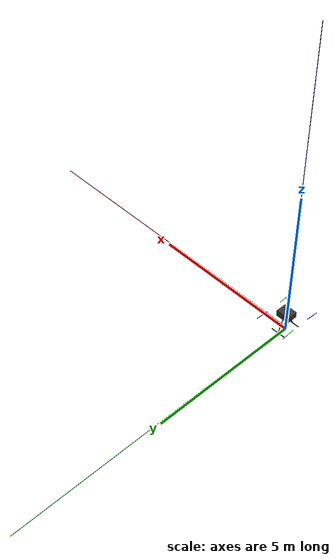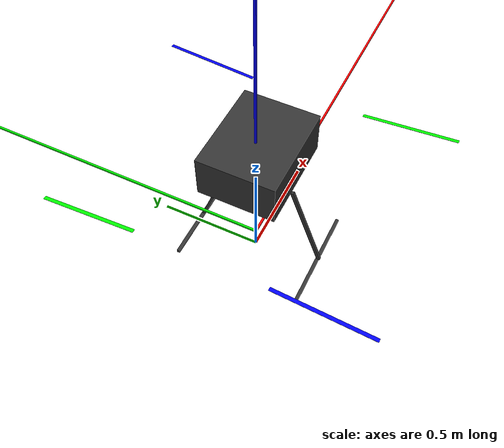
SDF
<sdf version="1.9">
 <world name="runway">
  <physics name="1ms" type="ignore">
   <max_step_size>0.001</max_step_size>
   <real_time_factor>1.0</real_time_factor>
  </physics>
  <plugin filename="gz-sim-physics-system" name="gz::sim::systems::Physics"/>
  <plugin filename="gz-sim-sensors-system" name="gz::sim::systems::Sensors">
   <render_engine>ogre2</render_engine>
  </plugin>
  <plugin filename="gz-sim-user-commands-system" name="gz::sim::systems::UserCommands"/>
  <plugin filename="gz-sim-scene-broadcaster-system" name="gz::sim::systems::SceneBroadcaster"/>
  <plugin filename="gz-sim-imu-system" name="gz::sim::systems::Imu"/>
  <scene><ambient>1.0 1.0 1.0</ambient><background>0.8 0.8 0.8</background></scene>
  <light type="directional" name="sun">
   <pose>0 0 10 0 0 0</pose>
   <diffuse>0.8 0.8 0.8 1</diffuse>
   <specular>0.8 0.8 0.8 1</specular>
   <attenuation>
    <range>1000</range>
    <constant>0.9</constant>
    <linear>0.01</linear>
    <quadratic>0.001</quadratic>
   </attenuation>
   <direction>-0.5 0.1 -0.9</direction>
  </light>
  <model name="axes">
   <static>1</static>
   <link name="link">
    <visual name="r">
     <pose>5 0 0.1 0 0 0</pose>
     <geometry><box><size>10 0.01 0.01</size></box></geometry>
     <material>
      <ambient>1 0 0 1</ambient>
      <diffuse>1 0 0 1</diffuse>
      <emissive>1 0 0 1</emissive>
      <specular>0.5 0.5 0.5 1</specular>
     </material>
    </visual>
    <visual name="g">
     <pose>0 5 0.1 0 0 0</pose>
     <geometry><box><size>0.01 10 0.01</size></box></geometry>
     <material>
      <ambient>0 1 0 1</ambient>
      <diffuse>0 1 0 1</diffuse>
      <emissive>0 1 0 1</emissive>
      <specular>0.5 0.5 0.5 1</specular>
     </material>
    </visual>
    <visual name="b">
     <pose>0 0 5.1 0 0 0</pose>
     <geometry><box><size>0.01 0.01 10</size></box></geometry>
     <material>
      <ambient>0 0 1 1</ambient>
      <diffuse>0 0 1 1</diffuse>
      <emissive>0 0 1 1</emissive>
      <specular>0.5 0.5 0.5 1</specular>
     </material>
    </visual>
   </link>
  </model>
  <include><pose degrees="true">0 0 0.5 0 0 90</pose><uri>model://anna1</uri></include>
 </world>
</sdf>

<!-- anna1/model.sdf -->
<sdf version='1.9'>
  <model name='anna1'>
    <self_collide>0</self_collide>
    <static>0</static>
    <link name="base_link">
      <velocity_decay>
        <linear>0.0</linear>
        <angular>0.0</angular>
      </velocity_decay>
      <inertial>
        <mass>15.5</mass>
        <inertia>
          <ixx>0.4</ixx>
          <ixy>0</ixy>
          <ixz>0</ixz>
          <iyy>0.4</iyy>
          <iyz>0</iyz>
          <izz>0.8</izz>
        </inertia>
        <pose>0 0 0 0 0 0</pose>
      </inertial>
      <gravity>1</gravity>

      <visual name="base_link_visual_0">
        <pose>0 -0.03 .127 0 0 0</pose>
        <geometry>
          <box>
            <size>0.35355339059327373 0.443553 0.2</size>
          </box>
        </geometry>
        <material>
          <ambient>0.2 0.2 0.2 1.0</ambient>
          <diffuse>0.2 0.2 0.2 1.0</diffuse>
        </material>
      </visual>
      <visual name='base_link_visual_2'>
        <pose>-0.24 -0.025 -0.25 0.35 0 1.5708</pose>
        <geometry>
          <box>
            <size>0.015 0.015 0.45</size>
          </box>
        </geometry>
        <material>
          <ambient>0.2 0.2 0.2 1.0</ambient>
          <diffuse>0.2 0.2 0.2 1.0</diffuse>
        </material>
      </visual>
      <visual name='base_link_visual_1'>
        <pose>0.22 -0.025 -0.25 -0.35 0 1.5708</pose>
        <geometry>
          <box>
            <size>0.015 0.015 0.45</size>
          </box>
        </geometry>
        <material>
          <ambient>0.2 0.2 0.2 1.0</ambient>
          <diffuse>0.2 0.2 0.2 1.0</diffuse>
        </material>
      </visual>
      <visual name='base_link_visual_3'>
        <pose>-0.31 -0.022 -0.465 0 0 1.5708</pose>
        <geometry>
          <box>
            <size>0.5 0.015 0.015</size>
          </box>
        </geometry>
        <material>
          <ambient>0.2 0.2 0.2 1.0</ambient>
          <diffuse>0.2 0.2 0.2 1.0</diffuse>
        </material>
      </visual>
      <visual name='base_link_visual_4'>
        <pose>0.3 -0.022 -0.465 0 0 1.5708</pose>
        <geometry>
          <box>
            <size>0.5 0.015 0.015</size>
          </box>
        </geometry>
        <material>
          <ambient>0.2 0.2 0.2 1.0</ambient>
          <diffuse>0.2 0.2 0.2 1.0</diffuse>
        </material>
      </visual>

      <collision name="base_link_collision_0">
        <pose>0 -0.03 .127 0 0 0</pose>
        <geometry>
          <box>
            <size>0.35355339059327373 0.443553 0.2</size>
          </box>
        </geometry>
        <surface>
          <contact>
            <ode>
              <min_depth>0.001</min_depth>
              <max_vel>0</max_vel>
            </ode>
          </contact>
          <friction>
             <ode>
               <mu>1000</mu>
               <mu2>500</mu2>
             </ode>
          </friction>
        </surface>
      </collision>
      <collision name='base_link_collision_1'>
        <pose>0.22 -0.025 -0.25 -0.35 0 1.5708</pose>
        <geometry>
          <box>
            <size>0.015 0.015 0.45</size>
          </box>
        </geometry>
        <surface>
          <contact>
            <ode>
              <min_depth>0.001</min_depth>
              <max_vel>0</max_vel>
            </ode>
          </contact>
          <friction>
             <ode>
               <mu>1000</mu>
               <mu2>500</mu2>
             </ode>
          </friction>
        </surface>
      </collision>
      <collision name='base_link_collision_2'>
        <pose>-0.24 -0.025 -0.25 0.35 0 1.5708</pose>
        <geometry>
          <box>
            <size>0.015 0.015 0.45</size>
          </box>
        </geometry>
        <surface>
          <contact>
            <ode>
              <min_depth>0.001</min_depth>
              <max_vel>0</max_vel>
            </ode>
          </contact>
          <friction>
             <ode>
               <mu>1000</mu>
               <mu2>500</mu2>
             </ode>
          </friction>
        </surface>
      </collision>
      <collision name='base_link_collision_3'>
        <pose>-0.31 -0.022 -0.465 0 0 1.5708</pose>
        <geometry>
          <box>
            <size>0.5 0.015 0.015</size>
          </box>
        </geometry>
        <surface>
          <contact>
            <ode>
              <min_depth>0.001</min_depth>
              <max_vel>0</max_vel>
            </ode>
          </contact>
          <friction>
             <ode>
               <mu>1000</mu>
               <mu2>500</mu2>
             </ode>
          </friction>
        </surface>
      </collision>
      <collision name='base_link_collision_4'>
        <pose>0.3 -0.022 -0.465 0 0 1.5708</pose>
        <geometry>
          <box>
            <size>0.5 0.015 0.015</size>
          </box>
        </geometry>
        <surface>
          <contact>
            <ode>
              <min_depth>0.001</min_depth>
              <max_vel>0</max_vel>
            </ode>
          </contact>
          <friction>
             <ode>
               <mu>1000</mu>
               <mu2>500</mu2>
             </ode>
          </friction>
        </surface>
      </collision>

      <sensor name="imu_sensor" type="imu">
        <pose degrees="true">0 0 0 180 0 0</pose>
        <always_on>1</always_on>
        <update_rate>1000</update_rate>
      </sensor>
    </link>
    <link name="rotor_0">
      <pose>0.49 -0.52 0.05 0.08 -0.08 0</pose>
      <gravity>1</gravity>
      <self_collide>0</self_collide>
      <velocity_decay/>
      <inertial>
        <mass>0.0160769</mass>
        <inertia>
          <ixx>3.8e-07</ixx>
          <ixy>0</ixy>
          <ixz>0</ixz>
          <iyy>2.612e-05</iyy>
          <iyz>0</iyz>
          <izz>2.65e-05</izz>
        </inertia>
        <pose>0 0 0 0 0 0</pose>
      </inertial>
      <enable_wind>0</enable_wind>
      <kinematic>0</kinematic>
      <visual name='rotor_visual'>
        <pose>0 0 0 0 0 0</pose>
        <geometry>
          <box>
            <size>0.44 0.016923 0.000846</size>
          </box>
        </geometry>
        <material>
          <ambient>0 0 1 1.0</ambient>
          <diffuse>0 0 1 1.0</diffuse>
        </material>
      </visual>
      <collision name='rotor_collision'>
        <laser_retro>0</laser_retro>
        <max_contacts>10</max_contacts>
        <pose>0 0 0 0 0 0</pose>
        <geometry>
          <box>
            <size>0.44 0.016923 0.000846</size>
          </box>
        </geometry>
      </collision>
    </link>
    <joint name="rotor_0_joint" type="revolute">
      <parent>base_link</parent>
      <child>rotor_0</child>
      <axis>
        <xyz>0 0 1</xyz>
        <limit>
          <lower>-1e+16</lower>
          <upper>1e+16</upper>
        </limit>
        <dynamics>
          <damping>0.004</damping>
        </dynamics>
        <use_parent_model_frame>1</use_parent_model_frame>
      </axis>
      <physics>
        <ode>
          <implicit_spring_damper>1</implicit_spring_damper>
        </ode>
      </physics>
    </joint>

    <link name="rotor_1">
      <pose>-0.52 0.499 0.05 0.08 -0.08 0</pose>
      <gravity>1</gravity>
      <self_collide>0</self_collide>
      <velocity_decay/>
      <inertial>
        <mass>0.0160769</mass>
        <inertia>
          <ixx>3.8e-07</ixx>
          <ixy>0</ixy>
          <ixz>0</ixz>
          <iyy>2.612e-05</iyy>
          <iyz>0</iyz>
          <izz>2.65e-05</izz>
        </inertia>
        <pose>0 0 0 0 0 0</pose>
      </inertial>
      <enable_wind>0</enable_wind>
      <kinematic>0</kinematic>
      <visual name='rotor_visual'>
        <pose>0 0 0 0 0 0</pose>
        <geometry>
          <box>
            <size>0.44 0.016923 0.000846</size>
          </box>
        </geometry>
        <material>
          <ambient>0 0 1 1.0</ambient>
          <diffuse>0 0 1 1.0</diffuse>
        </material>
      </visual>
      <collision name='rotor_collision'>
        <laser_retro>0</laser_retro>
        <max_contacts>10</max_contacts>
        <pose>0 0 0 0 0 0</pose>
        <geometry>
          <box>
            <size>0.44 0.016923 0.000846</size>
          </box>
        </geometry>
      </collision>
    </link>
    <joint name="rotor_1_joint" type="revolute">
      <parent>base_link</parent>
      <child>rotor_1</child>
      <axis>
        <xyz>0 0 1</xyz>
        <limit>
          <lower>-1e+16</lower>
          <upper>1e+16</upper>
        </limit>
        <dynamics>
          <damping>0.004</damping>
        </dynamics>
        <use_parent_model_frame>1</use_parent_model_frame>
      </axis>
      <physics>
        <ode>
          <implicit_spring_damper>1</implicit_spring_damper>
        </ode>
      </physics>
    </joint>

    <link name="rotor_2">
      <pose>0.5085 0.5 0.05 0.08 0.08 0</pose>
      <gravity>1</gravity>
      <self_collide>0</self_collide>
      <velocity_decay/>
      <inertial>
        <mass>0.0160769</mass>
        <inertia>
          <ixx>3.8e-07</ixx>
          <ixy>0</ixy>
          <ixz>0</ixz>
          <iyy>2.612e-05</iyy>
          <iyz>0</iyz>
          <izz>2.65e-05</izz>
        </inertia>
        <pose>0 0 0 0 0 0</pose>
      </inertial>
      <enable_wind>0</enable_wind>
      <kinematic>0</kinematic>
      <visual name='rotor_visual'>
        <pose>0 0 0 0 0 0</pose>
        <geometry>
          <box>
            <size>0.44 0.016923 0.000846</size>
          </box>
        </geometry>
        <material>
          <ambient>0 1 0 1.0</ambient>
          <diffuse>0 1 0 1.0</diffuse>
        </material>
      </visual>
      <collision name='rotor_collision'>
        <laser_retro>0</laser_retro>
        <max_contacts>10</max_contacts>
        <pose>0 0 0 0 0 0</pose>
        <geometry>
          <box>
            <size>0.44 0.016923 0.000846</size>
          </box>
        </geometry>
      </collision>
    </link>
    <joint name="rotor_2_joint" type="revolute">
      <parent>base_link</parent>
      <child>rotor_2</child>
      <axis>
        <xyz>0 0 1</xyz>
        <limit>
          <lower>-1e+16</lower>
          <upper>1e+16</upper>
        </limit>
        <dynamics>
          <damping>0.004</damping>
        </dynamics>
        <use_parent_model_frame>1</use_parent_model_frame>
      </axis>
      <physics>
        <ode>
          <implicit_spring_damper>1</implicit_spring_damper>
        </ode>
      </physics>
    </joint>

    <link name="rotor_3">
      <pose>-0.5085 -0.52 0.05 0.08 0.08 0</pose>
      <gravity>1</gravity>
      <self_collide>0</self_collide>
      <velocity_decay/>
      <inertial>
        <mass>0.0160769</mass>
        <inertia>
          <ixx>3.8e-07</ixx>
          <ixy>0</ixy>
          <ixz>0</ixz>
          <iyy>2.612e-05</iyy>
          <iyz>0</iyz>
          <izz>2.65e-05</izz>
        </inertia>
        <pose>0 0 0 0 0 0</pose>
      </inertial>
      <enable_wind>0</enable_wind>
      <kinematic>0</kinematic>
      <visual name='rotor_visual'>
        <pose>0 0 0 0 0 0</pose>
        <geometry>
          <box>
            <size>0.44 0.016923 0.000846</size>
          </box>
        </geometry>
        <material>
          <ambient>0 1 0 1.0</ambient>
          <diffuse>0 1 0 1.0</diffuse>
        </material>
      </visual>
      <collision name='rotor_collision'>
        <laser_retro>0</laser_retro>
        <max_contacts>10</max_contacts>
        <pose>0 0 0 0 0 0</pose>
        <geometry>
          <box>
            <size>0.44 0.016923 0.000846</size>
          </box>
        </geometry>
      </collision>
    </link>
    <joint name="rotor_3_joint" type="revolute">
      <parent>base_link</parent>
      <child>rotor_3</child>
      <axis>
        <xyz>0 0 1</xyz>
        <limit>
          <lower>-1e+16</lower>
          <upper>1e+16</upper>
        </limit>
        <dynamics>
          <damping>0.004</damping>
        </dynamics>
        <use_parent_model_frame>1</use_parent_model_frame>
      </axis>
      <physics>
        <ode>
          <implicit_spring_damper>1</implicit_spring_damper>
        </ode>
      </physics>
    </joint>

    <!-- rotor_0_blade_1 -->
    <plugin filename="gz-sim-lift-drag-system"
        name="gz::sim::systems::LiftDrag">
      <a0>0.3</a0>
      <alpha_stall>1.4</alpha_stall>
      <cla>4.2500</cla>
      <cda>0.10</cda>
      <cma>0.00</cma>
      <cla_stall>-0.025</cla_stall>
      <cda_stall>0.0</cda_stall>
      <cma_stall>0.0</cma_stall>
      <area>0.008</area>
      <air_density>1.2041</air_density>
      <cp>0.2 0 0</cp>
      <forward>0 1 0</forward>
      <upward>0 0 1</upward>
      <link_name>rotor_0</link_name>
    </plugin>
    <!-- rotor_0_blade_2 -->
    <plugin filename="gz-sim-lift-drag-system"
        name="gz::sim::systems::LiftDrag">
      <a0>0.3</a0>
      <alpha_stall>1.4</alpha_stall>
      <cla>4.2500</cla>
      <cda>0.10</cda>
      <cma>0.00</cma>
      <cla_stall>-0.025</cla_stall>
      <cda_stall>0.0</cda_stall>
      <cma_stall>0.0</cma_stall>
      <area>0.008</area>
      <air_density>1.2041</air_density>
      <cp>-0.2 0 0</cp>
      <forward>0 -1 0</forward>
      <upward>0 0 1</upward>
      <link_name>rotor_0</link_name>
    </plugin>

    <!-- rotor_1_blade_1 -->
    <plugin filename="gz-sim-lift-drag-system"
        name="gz::sim::systems::LiftDrag">
      <a0>0.3</a0>
      <alpha_stall>1.4</alpha_stall>
      <cla>4.2500</cla>
      <cda>0.10</cda>
      <cma>0.00</cma>
      <cla_stall>-0.025</cla_stall>
      <cda_stall>0.0</cda_stall>
      <cma_stall>0.0</cma_stall>
      <area>0.008</area>
      <air_density>1.2041</air_density>
      <cp>0.2 0 0</cp>
      <forward>0 1 0</forward>
      <upward>0 0 1</upward>
      <link_name>rotor_1</link_name>
    </plugin>
    <!-- rotor_1_blade_2 -->
    <plugin filename="gz-sim-lift-drag-system"
        name="gz::sim::systems::LiftDrag">
      <a0>0.3</a0>
      <alpha_stall>1.4</alpha_stall>
      <cla>4.2500</cla>
      <cda>0.10</cda>
      <cma>0.00</cma>
      <cla_stall>-0.025</cla_stall>
      <cda_stall>0.0</cda_stall>
      <cma_stall>0.0</cma_stall>
      <area>0.008</area>
      <air_density>1.2041</air_density>
      <cp>-0.2 0 0</cp>
      <forward>0 -1 0</forward>
      <upward>0 0 1</upward>
      <link_name>rotor_1</link_name>
    </plugin>

    <!-- rotor_2_blade_1 -->
    <plugin filename="gz-sim-lift-drag-system"
        name="gz::sim::systems::LiftDrag">
      <a0>0.3</a0>
      <alpha_stall>1.4</alpha_stall>
      <cla>4.2500</cla>
      <cda>0.10</cda>
      <cma>0.00</cma>
      <cla_stall>-0.025</cla_stall>
      <cda_stall>0.0</cda_stall>
      <cma_stall>0.0</cma_stall>
      <area>0.008</area>
      <air_density>1.2041</air_density>
      <cp>0.2 0 0</cp>
      <forward>0 -1 0</forward>
      <upward>0 0 1</upward>
      <link_name>rotor_2</link_name>
    </plugin>
    <!-- rotor_2_blade_2 -->
    <plugin filename="gz-sim-lift-drag-system"
        name="gz::sim::systems::LiftDrag">
      <a0>0.3</a0>
      <alpha_stall>1.4</alpha_stall>
      <cla>4.2500</cla>
      <cda>0.10</cda>
      <cma>0.00</cma>
      <cla_stall>-0.025</cla_stall>
      <cda_stall>0.0</cda_stall>
      <cma_stall>0.0</cma_stall>
      <area>0.008</area>
      <air_density>1.2041</air_density>
      <cp>-0.2 0 0</cp>
      <forward>0 1 0</forward>
      <upward>0 0 1</upward>
      <link_name>rotor_2</link_name>
    </plugin>

    <!-- rotor_3_blade_1 -->
    <plugin filename="gz-sim-lift-drag-system"
        name="gz::sim::systems::LiftDrag">
      <a0>0.3</a0>
      <alpha_stall>1.4</alpha_stall>
      <cla>4.2500</cla>
      <cda>0.10</cda>
      <cma>0.00</cma>
      <cla_stall>-0.025</cla_stall>
      <cda_stall>0.0</cda_stall>
      <cma_stall>0.0</cma_stall>
      <area>0.008</area>
      <air_density>1.2041</air_density>
      <cp>0.2 0 0</cp>
      <forward>0 -1 0</forward>
      <upward>0 0 1</upward>
      <link_name>rotor_3</link_name>
    </plugin>
    <!-- rotor_3_blade_2 -->
    <plugin filename="gz-sim-lift-drag-system"
        name="gz::sim::systems::LiftDrag">
      <a0>0.3</a0>
      <alpha_stall>1.4</alpha_stall>
      <cla>4.2500</cla>
      <cda>0.10</cda>
      <cma>0.00</cma>
      <cla_stall>-0.025</cla_stall>
      <cda_stall>0.0</cda_stall>
      <cma_stall>0.0</cma_stall>
      <area>0.008</area>
      <air_density>1.2041</air_density>
      <cp>-0.2 0 0</cp>
      <forward>0 1 0</forward>
      <upward>0 0 1</upward>
      <link_name>rotor_3</link_name>
    </plugin>

    <plugin name="ArduPilotPlugin" filename="ArduPilotPlugin">
      <!-- Port settings -->
      <fdm_addr>127.0.0.1</fdm_addr>
      <fdm_port_in>9002</fdm_port_in>
      <connectionTimeoutMaxCount>5</connectionTimeoutMaxCount>
      <lock_step>1</lock_step>
      <have_32_channels>0</have_32_channels>

      <!-- Frame conventions -->
      <modelXYZToAirplaneXForwardZDown degrees="true">0 0 0 180 0 0</modelXYZToAirplaneXForwardZDown>
      <gazeboXYZToNED degrees="true">0 0 0 180 0 90</gazeboXYZToNED>

      <!-- Sensors -->
      <imuName>base_link::imu_sensor</imuName>

      <!--
          incoming control command [0, 1]
          so offset it by 0 to get [0, 1]
          and divide max target by 1.
          offset = 0
          multiplier = 838 max rpm / 1 = 838
        -->
      <control channel="0">
        <jointName>rotor_0_joint</jointName>
        <useForce>1</useForce>
        <multiplier>832</multiplier>
        <offset>0</offset>
        <servo_min>1000</servo_min>
        <servo_max>2000</servo_max>
        <type>VELOCITY</type>
        <p_gain>0.3</p_gain>
        <i_gain>0</i_gain>
        <d_gain>0</d_gain>
        <i_max>0</i_max>
        <i_min>0</i_min>
        <cmd_max>4</cmd_max>
        <cmd_min>-4</cmd_min>
        <controlVelocitySlowdownSim>1</controlVelocitySlowdownSim>
      </control>

      <control channel="1">
        <jointName>rotor_1_joint</jointName>
        <useForce>1</useForce>
        <multiplier>832</multiplier>
        <offset>0</offset>
        <servo_min>1000</servo_min>
        <servo_max>2000</servo_max>
        <type>VELOCITY</type>
        <p_gain>0.3</p_gain>
        <i_gain>0</i_gain>
        <d_gain>0</d_gain>
        <i_max>0</i_max>
        <i_min>0</i_min>
        <cmd_max>4</cmd_max>
        <cmd_min>-4</cmd_min>
        <controlVelocitySlowdownSim>1</controlVelocitySlowdownSim>
      </control>

      <control channel="2">
        <jointName>rotor_2_joint</jointName>
        <useForce>1</useForce>
        <multiplier>-832</multiplier>
        <offset>0</offset>
        <servo_min>1000</servo_min>
        <servo_max>2000</servo_max>
        <type>VELOCITY</type>
        <p_gain>0.3</p_gain>
        <i_gain>0</i_gain>
        <d_gain>0</d_gain>
        <i_max>0</i_max>
        <i_min>0</i_min>
        <cmd_max>4</cmd_max>
        <cmd_min>-4</cmd_min>
        <controlVelocitySlowdownSim>1</controlVelocitySlowdownSim>
      </control>

      <control channel="3">
        <jointName>rotor_3_joint</jointName>
        <useForce>1</useForce>
        <multiplier>-832</multiplier>
        <offset>0</offset>
        <servo_min>1000</servo_min>
        <servo_max>2000</servo_max>
        <type>VELOCITY</type>
        <p_gain>0.3</p_gain>
        <i_gain>0</i_gain>
        <d_gain>0</d_gain>
        <i_max>0</i_max>
        <i_min>0</i_min>
        <cmd_max>4</cmd_max>
        <cmd_min>-4</cmd_min>
        <controlVelocitySlowdownSim>1</controlVelocitySlowdownSim>
      </control>
    </plugin>
  </model>
</sdf>
